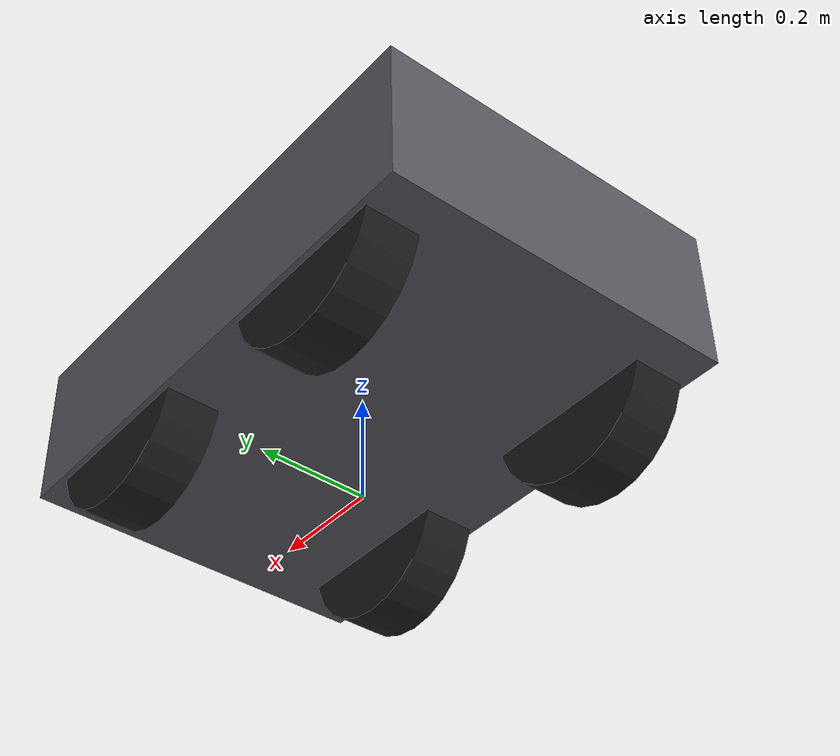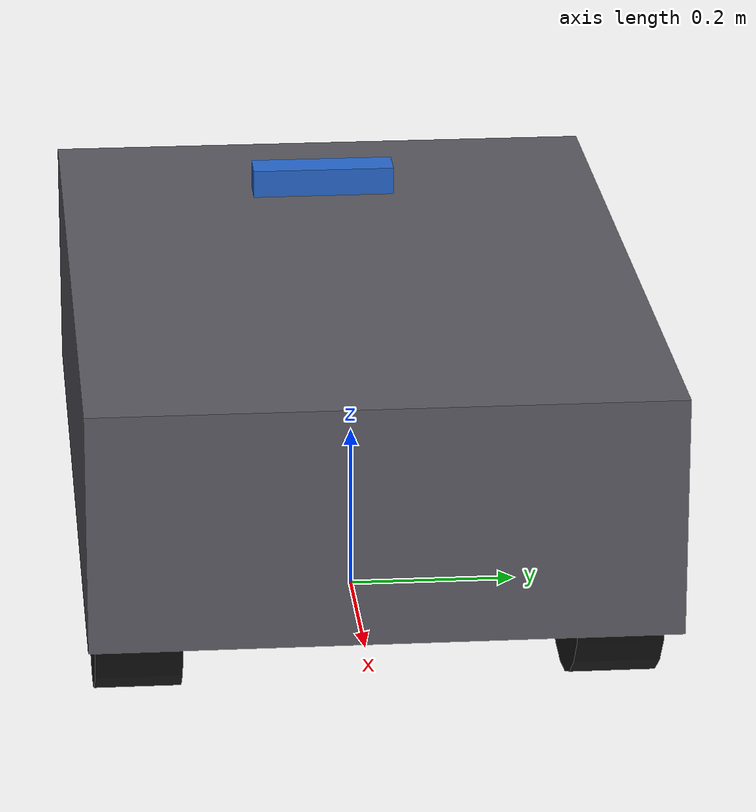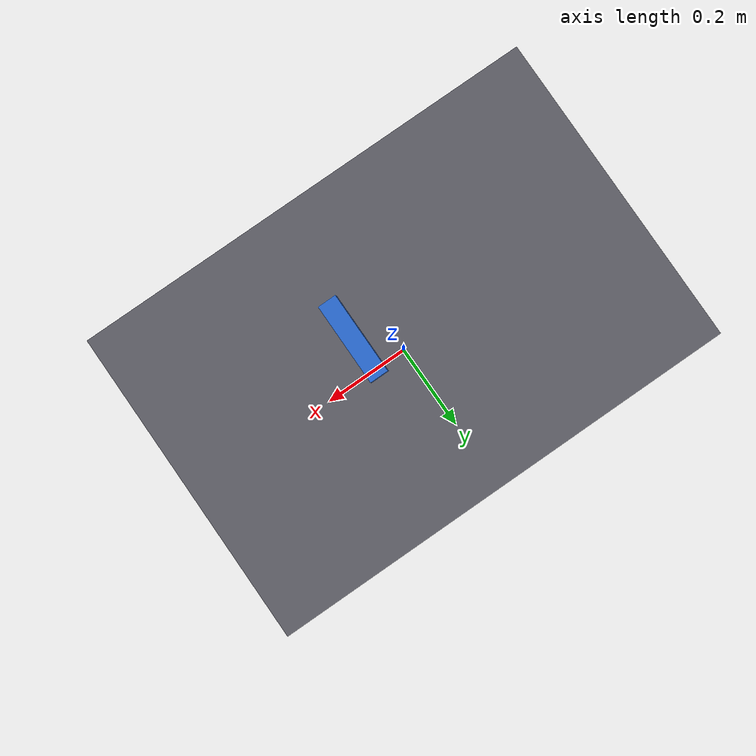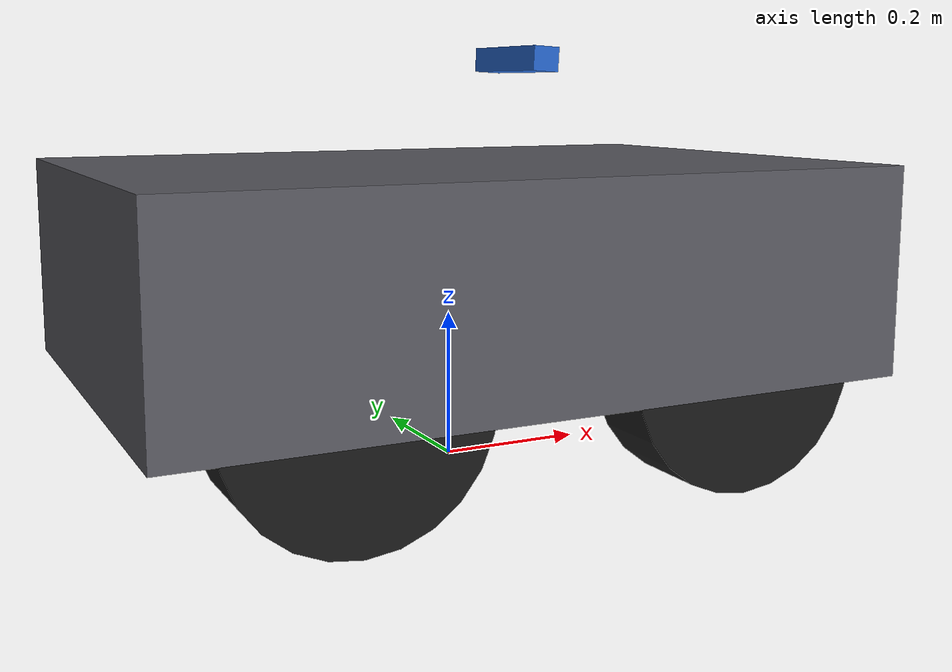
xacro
<?xml version="1.0"?>
<robot name="sidewalk_robot" xmlns:xacro="http://www.ros.org/wiki/xacro">

  <xacro:property name="base_length"      value="0.99"/>
  <xacro:property name="base_width"       value="0.67"/>
  <xacro:property name="base_height"      value="0.28"/>
  <xacro:property name="ground_clearance" value="0.13"/>
  <xacro:property name="wheel_radius"     value="0.165"/>
  <xacro:property name="wheel_width"      value="0.10"/>
  <xacro:property name="wheel_separation" value="0.55"/>

  <!-- ZED X physical envelope: 163 x 32 x 37 mm, about 240 g. -->
  <xacro:property name="zedx_length" value="0.163"/>
  <xacro:property name="zedx_height" value="0.032"/>
  <xacro:property name="zedx_depth"  value="0.037"/>
  <xacro:property name="zedx_mass"   value="0.240"/>
  <!-- Stereo baseline: the physical distance between the two lenses. This is
       the ruler that gives stereo vision its absolute scale. -->
  <xacro:property name="zedx_baseline" value="0.120"/>

  <xacro:property name="cam_front_x"     value="0.081"/>
  <xacro:property name="cam_front_y"     value="-0.040"/>
  <xacro:property name="cam_front_z"     value="0.547"/>
  <xacro:property name="cam_front_pitch" value="0.0565"/>

  <xacro:property name="cam_rear_x"     value="-0.35"/>
  <xacro:property name="cam_rear_y"     value="0.00"/>
  <xacro:property name="cam_rear_z"     value="0.62"/>
  <xacro:property name="cam_rear_pitch" value="0.087"/>

  <xacro:property name="rear_camera_installed" value="false"/>

  <xacro:property name="PI" value="3.14159265359"/>

  <material name="grey">  <color rgba="0.35 0.35 0.38 1.0"/></material>
  <material name="black"> <color rgba="0.10 0.10 0.10 1.0"/></material>
  <material name="blue">  <color rgba="0.15 0.40 0.80 1.0"/></material>
  <material name="orange"><color rgba="0.90 0.50 0.10 1.0"/></material>

  <link name="base_link"/>

  <link name="chassis_link">
    <visual>
      <geometry><box size="${base_length} ${base_width} ${base_height}"/></geometry>
      <material name="grey"/>
    </visual>
    <collision>
      <geometry><box size="${base_length} ${base_width} ${base_height}"/></geometry>
    </collision>
    <inertial>
      <mass value="35.0"/>
      <!-- Approximate box inertia. Adequate for visualisation and for a
           first-pass EKF; replace with measured or CAD-derived values before
           making any dynamic claim. -->
      <inertia ixx="1.5" ixy="0.0" ixz="0.0" iyy="2.8" iyz="0.0" izz="3.2"/>
    </inertial>
  </link>

  <joint name="base_to_chassis" type="fixed">
    <parent link="base_link"/>
    <child  link="chassis_link"/>
    <origin xyz="0 0 ${ground_clearance + base_height/2}" rpy="0 0 0"/>
  </joint>

  <!-- ─────────────────────────── wheels ─────────────────────────────── -->
  <xacro:macro name="wheel" params="prefix y_offset x_offset">
    <link name="${prefix}_wheel_link">
      <visual>
        <origin rpy="${PI/2} 0 0"/>
        <geometry><cylinder radius="${wheel_radius}" length="${wheel_width}"/></geometry>
        <material name="black"/>
      </visual>
      <collision>
        <origin rpy="${PI/2} 0 0"/>
        <geometry><cylinder radius="${wheel_radius}" length="${wheel_width}"/></geometry>
      </collision>
      <inertial>
        <mass value="2.5"/>
        <inertia ixx="0.02" ixy="0" ixz="0" iyy="0.02" iyz="0" izz="0.03"/>
      </inertial>
    </link>
    <joint name="${prefix}_wheel_joint" type="continuous">
      <parent link="chassis_link"/>
      <child  link="${prefix}_wheel_link"/>
      <origin xyz="${x_offset} ${y_offset} ${-base_height/2 - ground_clearance + wheel_radius}"/>
      <axis xyz="0 1 0"/>
    </joint>
  </xacro:macro>

  <xacro:wheel prefix="front_left"  y_offset="${ wheel_separation/2}" x_offset="0.26"/>
  <xacro:wheel prefix="front_right" y_offset="${-wheel_separation/2}" x_offset="0.26"/>
  <xacro:wheel prefix="rear_left"   y_offset="${ wheel_separation/2}" x_offset="-0.26"/>
  <xacro:wheel prefix="rear_right"  y_offset="${-wheel_separation/2}" x_offset="-0.26"/>

  <xacro:macro name="zedx_camera" params="name x y z roll pitch yaw colour">

    <!-- Housing, in body convention. -->
    <link name="${name}_link">
      <visual>
        <geometry><box size="${zedx_depth} ${zedx_length} ${zedx_height}"/></geometry>
        <material name="${colour}"/>
      </visual>
      <collision>
        <geometry><box size="${zedx_depth} ${zedx_length} ${zedx_height}"/></geometry>
      </collision>
      <inertial>
        <mass value="${zedx_mass}"/>
        <inertia ixx="0.0003" ixy="0" ixz="0" iyy="0.0001" iyz="0" izz="0.0003"/>
      </inertial>
    </link>

    <joint name="base_to_${name}" type="fixed">
      <parent link="base_link"/>
      <child  link="${name}_link"/>
      <origin xyz="${x} ${y} ${z}" rpy="${roll} ${pitch} ${yaw}"/>
    </joint>

    <link name="${name}_left_camera_frame"/>
    <joint name="${name}_left_joint" type="fixed">
      <parent link="${name}_link"/>
      <child  link="${name}_left_camera_frame"/>
      <origin xyz="0 ${zedx_baseline/2} 0" rpy="0 0 0"/>
    </joint>

    <!-- Body convention -> optical convention. Do not tune this. -->
    <link name="${name}_left_camera_optical_frame"/>
    <joint name="${name}_left_optical_joint" type="fixed">
      <parent link="${name}_left_camera_frame"/>
      <child  link="${name}_left_camera_optical_frame"/>
      <origin xyz="0 0 0" rpy="${-PI/2} 0 ${-PI/2}"/>
    </joint>

    <!-- Right lens, one baseline away. Depth resolution derives directly from
         this separation: Z = f*B/d, so a wider B improves distant depth. -->
    <link name="${name}_right_camera_frame"/>
    <joint name="${name}_right_joint" type="fixed">
      <parent link="${name}_link"/>
      <child  link="${name}_right_camera_frame"/>
      <origin xyz="0 ${-zedx_baseline/2} 0" rpy="0 0 0"/>
    </joint>

    <link name="${name}_right_camera_optical_frame"/>
    <joint name="${name}_right_optical_joint" type="fixed">
      <parent link="${name}_right_camera_frame"/>
      <child  link="${name}_right_camera_optical_frame"/>
      <origin xyz="0 0 0" rpy="${-PI/2} 0 ${-PI/2}"/>
    </joint>

    <!-- IMU, inside the housing. The SDK knows the precise internal offset;
         this frame exists so the transform tree is complete and so fusion
         nodes have somewhere to attach. -->
    <link name="${name}_imu_link"/>
    <joint name="${name}_imu_joint" type="fixed">
      <parent link="${name}_link"/>
      <child  link="${name}_imu_link"/>
      <origin xyz="0 0 0" rpy="0 0 0"/>
    </joint>

  </xacro:macro>

  <!-- Front camera — installed. MOUNT point, not the lens. See above. -->
  <xacro:zedx_camera name="zedx_front"
                     x="${cam_front_x}" y="${cam_front_y}" z="${cam_front_z}"
                     roll="0" pitch="${cam_front_pitch}" yaw="0"
                     colour="blue"/>

  <xacro:if value="${rear_camera_installed}">
    <xacro:zedx_camera name="zedx_rear"
                       x="${cam_rear_x}" y="${cam_rear_y}" z="${cam_rear_z}"
                       roll="0" pitch="${cam_rear_pitch}" yaw="${PI}"
                       colour="orange"/>
  </xacro:if>

</robot>
